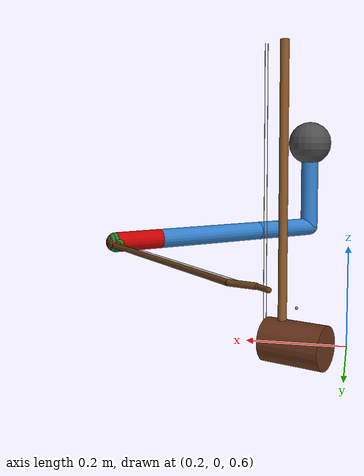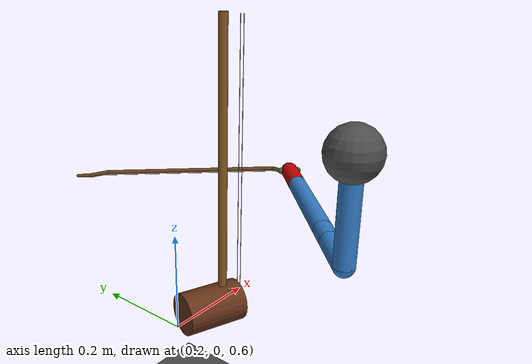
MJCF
<mujoco model="simple_arm">

    <compiler angle="radian" autolimits="true"/>

    <default>
        <default class="arm">
            <!-- The position bound that ctrlrange gave under position
                 control; velocity ctrl no longer bounds it. -->
            <joint damping="0.5" range="-3.14 3.14"/>
            <geom type="capsule"
                rgba="0.2 0.5 0.8 1"
                density="1000"
                size="0.02" contype="0" conaffinity="0"/>
            <velocity kv="30" ctrlrange="-2 2"/>
        </default>

        <default class="bow_hair">
            <geom type="capsule" size="0.0004" rgba="0.95 0.92 0.85 1"
                  contype="2" conaffinity="1"
                  friction="1.2 0.02 0.001" solref="0.015 1" solimp="0.9 0.95 0.002" condim="3"/>
        </default>

        <default class="bow_hair_string_contact">
            <pair condim="3"
                  friction="0.4 0.4 0.02 0.001 0.001"
                  solref="0.015 4"
                  solimp="0.02 0.9 0.0035 0.5 2"
                  margin="0.004"
                  gap="0.02"/>
        </default>

        <default class="bow_stick_string_contact">
            <pair condim="3"
                  friction="0.3 0.3 0.005 0.0001 0.0001"
                  solref="0.01 1"
                  solimp="0.9 0.95 0.001"
                  margin="0.004"/>
        </default>
    </default>

    <worldbody>
        <body name="base" pos="0.3 -0.3 1" childclass="arm" euler="0 0 -2.3708">
            <geom type="sphere"
                  size="0.05 0.05"
                  rgba="0.3 0.3 0.3 1"/>

            <joint name="joint1"
                   type="hinge"
                   axis="0 1 0"/>
            <body name="link1" pos="0 0 0">
                <geom type="cylinder" fromto="0 0 0   0 0 -0.20"/>

                <body name="joint2_body" pos="0 0 -0.20">
                    <joint name="joint2"
                           type="hinge"
                           axis="0 1 0"/>
                    <geom fromto="0 0 0   -0.1 0 0"/>

                    <body name="joint5_body" pos="-0.1 0 0">
                    <joint name="joint5"
                           type="hinge"
                           axis="0 1 0"/>
                    <geom fromto="0 0 0   -0.05 0 0"/>

                        <body name="joint3_body" pos="-0.05 0 0">
                            <joint name="joint3"
                                type="hinge"
                                axis="0 0 1"/>
                            <geom fromto="0 0 0   -0.25 0 0"/>

                            <body name="joint4_body" pos="-0.25 0 0">
                                <joint name="joint4"
                                    type="hinge"
                                    axis="0 0 1"/>
                                <geom fromto="0 0 0   -0.1 0 0" rgba="0.8 0 0 1"/>

                                <body name="end_effector" pos="-0.1 0 0">
                                    <geom type="sphere"
                                        size="0.02"
                                        rgba="0.1 0.5 0.2 1"/>
                                    <body name="bow_frog" pos="0 0 0" euler="-1.5708 3.14 0">

                                        <joint name="bow_frog_hinge"
                                            type="hinge"
                                            axis="0 1 0"
                                            damping="0.05"
                                            limited="true"
                                            range="-1.57 1.57"/>

                                        <geom name="frog_geom" type="capsule" size="0.008 0.02" rgba="0.2 0.5 0.05 1" mass="0.02"/>

                                        <body name="bow_link_0" pos="0.005 0 0.025" zaxis="1 0 1">
                                            <geom name="bow_geom_0" type="capsule" fromto="0 0 0  0 0 0.02" size="0.005" rgba="0.4 0.25 0.1 1" mass="0.004"/>

                                            <body name="bow_link_1" pos="-0 0 0.02" zaxis="-1 0 1">
                                                <geom name="bow_geom_1" type="capsule" fromto="0 0 0  0 0 0.41" size="0.005" rgba="0.4 0.25 0.1 1" mass="0.008" contype="2" conaffinity="1"/>

                                                <body name="bow_link_7" pos="0 0 0.41">
                                                    <geom name="bow_geom_7" type="capsule" fromto="0 0 0  -0.02 0 0.04" size="0.005" rgba="0.4 0.25 0.1 1" mass="0.008"/>

                                                    <body name="bow_tip" pos="-0.02 0 0.04">
                                                        <geom name="bow_tip_geom" type="capsule" fromto="0 0 0  0 0 0.03" size="0.004" rgba="0.4 0.25 0.1 1" mass="0.004"/>
                                                        <site name="bow_tip_site" pos="0 0 0.03" size="0.003"/>

                                                        <body name="bow_hair" pos="0 0 0">
                                                            <geom name="bow_hair_geom" class="bow_hair" fromto="0 0 0  0 0 -0.5" mass="0.002016"/>
                                                            <site name="bow_hair_frog_site" pos="0 0 0" size="0.0005"/>
                                                            <site name="bow_hair_tip_site" pos="0 0 -0.5" size="0.0005"/>
                                                        </body>
                                                    </body>
                                                </body>
                                            </body>
                                        </body>

                                        <site name="bow_frog_site" pos="0 0 -0.01" size="0.003"/>
                                    </body>

                                </body>

                            </body>

                        </body>

                    </body>

                </body>

            </body>

        </body>

    </worldbody>

    <actuator>
        <general joint="joint1" ctrllimited="true" ctrlrange="-2 2" forcerange="-8 8"
                 dyntype="filter" dynprm="0.05 0 0"
                 gaintype="fixed" gainprm="80 0 0"
                 biastype="affine" biasprm="0 0 -80"/>
        <general joint="joint2" ctrllimited="true" ctrlrange="-2 2" forcerange="-4 4"
                 dyntype="filter" dynprm="0.05 0 0"
                 gaintype="fixed" gainprm="30 0 0"
                 biastype="affine" biasprm="0 0 -30"/>
        <general joint="joint5" ctrllimited="true" ctrlrange="-2 2" forcerange="-2 2"
                 dyntype="filter" dynprm="0.03 0 0"
                 gaintype="fixed" gainprm="30 0 0"
                 biastype="affine" biasprm="0 0 -30"/>
        <general joint="joint3" ctrllimited="true" ctrlrange="-2 2" forcerange="-3 3"
                 dyntype="filter" dynprm="0.04 0 0"
                 gaintype="fixed" gainprm="80 0 0"
                 biastype="affine" biasprm="0 0 -80"/>
        <general joint="joint4" ctrllimited="true" ctrlrange="-2 2" forcerange="-1 1"
                 dyntype="filter" dynprm="0.03 0 0"
                 gaintype="fixed" gainprm="30 0 0"
                 biastype="affine" biasprm="0 0 -30"/>

        <motor name="bow_frog_motor" joint="bow_frog_hinge" gear="1"
               ctrllimited="true" ctrlrange="-1 1"/>
    </actuator>

    <include file="erhu.xml"/>

    <contact>
        <pair name="bow_hair_string_D_pair" class="bow_hair_string_contact"
              geom1="bow_hair_geom" geom2="string_D_geom"/>
        <pair name="bow_hair_string_A_pair" class="bow_hair_string_contact"
              geom1="bow_hair_geom" geom2="string_A_geom"/>

        <!-- Anti-tunneling backstop pairs: the wood bow should never cross
             the strings, only the hair should touch them. -->
        <pair name="bow_stick0_string_D_pair" class="bow_stick_string_contact"
              geom1="bow_geom_0" geom2="string_D_geom"/>
        <pair name="bow_stick0_string_A_pair" class="bow_stick_string_contact"
              geom1="bow_geom_0" geom2="string_A_geom"/>
        <pair name="bow_stick7_string_D_pair" class="bow_stick_string_contact"
              geom1="bow_geom_7" geom2="string_D_geom"/>
        <pair name="bow_stick7_string_A_pair" class="bow_stick_string_contact"
              geom1="bow_geom_7" geom2="string_A_geom"/>

    </contact>

</mujoco>

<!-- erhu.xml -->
<mujoco model="erhu">
  <compiler angle="radian" autolimits="true"/>
  <option timestep="0.002" gravity="0 0 -9.8" integrator="implicitfast">
    <flag contact="enable"/>
  </option>

  <default>
    <geom density="750" solref="0.004 1" solimp="0.9 0.95 0.001" contype="1" conaffinity="2"/>
    <joint damping="0.01"/>
    <default class="string_contact">
      <geom friction="1.2 0.02 0.001" solref="0.025 4" solimp="0.9 0.95 0.001" condim="3"/>
    </default>
  </default>

  <worldbody>
    <light pos="0 0 2" dir="0 0 -1" diffuse="1 1 1"/>
    <geom name="floor" type="plane" size="2 2 0.1" rgba="0.3 0.3 0.3 1" contype="0" conaffinity="0"/>

    <!-- ============================ ERHU BODY ============================ -->
    <body name="erhu_root" pos="0.3 0 0.6" euler="0 0 -0.35">
      <!--joint name="erhu_root_free" type="free"/-->

      <body name="sound_box" pos="0 0 0">
        <geom name="sound_box_geom" type="cylinder" size="0.045 0.065"
              rgba="0.4 0.2 0.1 1" mass="0.35" zaxis="1 0 0"/>
        <site name="tailpiece" pos="0.02 -0.045 0.06" size="0.003"/>

        <body name="neck" pos="0.03 0 0">
          <geom name="neck_geom" type="cylinder" size="0.009 0.30"
                pos="0 0 0.30" rgba="0.55 0.35 0.15 1" mass="0.12"/>
        </body>
      </body>

      <body name="string_D" pos="0.07 -0.006 0.595">
        <geom name="string_D_geom" type="cylinder" size="0.0006 0.3"
              pos="0 0 -0.3" rgba="0.9 0.9 0.85 1" mass="0.003"
              class="string_contact"/>
      </body>

      <body name="string_A" pos="0.07 0.006 0.595">
        <geom name="string_A_geom" type="cylinder" size="0.0006 0.3"
              pos="0 0 -0.3" rgba="0.85 0.85 0.9 1" mass="0.0022"
              class="string_contact"/>
      </body>
          </body>
  </worldbody>

  <sensor>
    <force name="bow_arm_contact" site="bow_frog_site"/>
  </sensor>
</mujoco>
